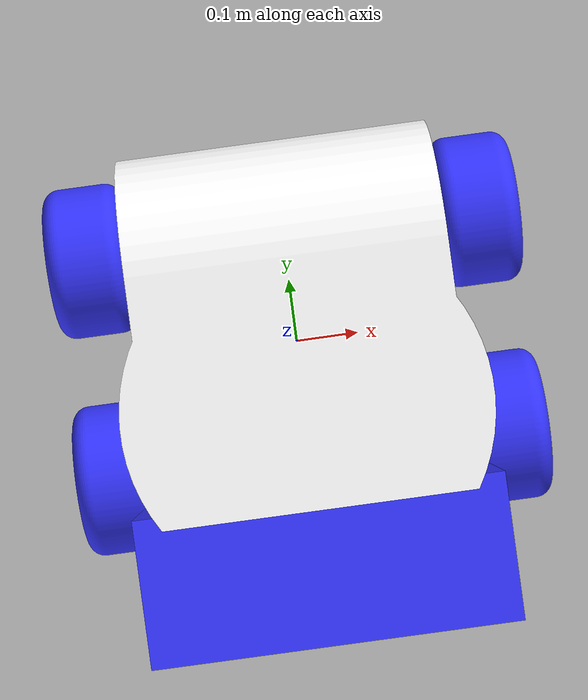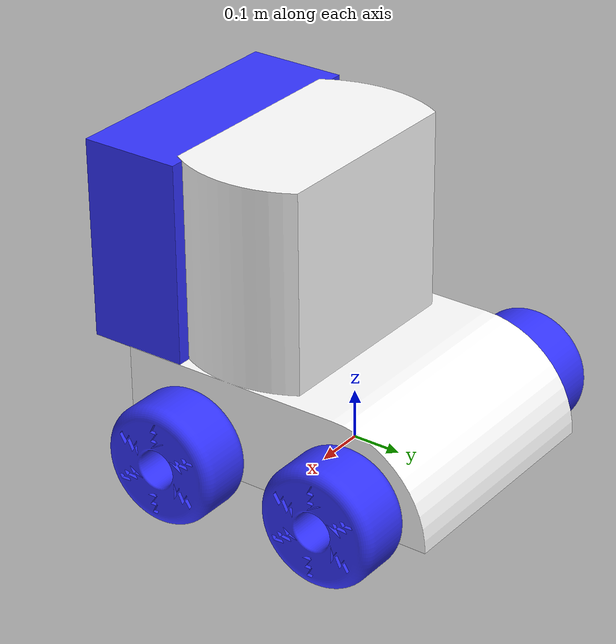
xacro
<?xml version="1.0"?>
<robot xmlns:xacro="http://www.ros.org/wiki/xacro" >
<xacro:include filename="inertial_macros.xacro" />

    <material name="white">
        <color rgba="1 1 1 1" />
    </material>

    <material name="orange">
        <color rgba="1 0.3 0.1 1"/>
    </material>

    <material name="blue">
        <color rgba="0.2 0.2 1 1"/>
    </material>

    <material name="black">
        <color rgba="0 0 0 1"/>
    </material>

    <material name="red">
        <color rgba="1 0 0 1"/>
    </material>

    <!-- BASE LINK -->

    <link name="base_link">

    </link>

     <!-- BASE_FOOTPRINT LINK -->

    <joint name="base_footprint_joint" type="fixed">
        <parent link="base_link"/>
        <child link="base_footprint"/>
        <origin xyz="0 0 0" rpy="0 0 0"/>
    </joint>

    <link name="base_footprint">
    </link>

    <joint name="chassis_joint" type="fixed">
        <parent link="base_link"/>
        <child link="chassis"/>
        <origin xyz="0 0 0"/>
    </joint>

    <link name="chassis">
    <visual>
        <origin xyz="0 0 0" rpy="0 0 0"/>
        <geometry>
            <mesh filename="file:///home/kaow/carkaow_ws/src/articubot_one/description/carkaow2.dae" scale =" 0.5 0.5 0.5"/>
        </geometry>
        <material name="white"/>
    </visual>
    <collision>
        <geometry>
            <mesh filename="file:///home/kaow/carkaow_ws/src/articubot_one/description/carkaow2.dae" scale =" 0.5 0.5 0.5"/>
        </geometry>
    </collision>
    <xacro:inertial_box mass="0.5" x="0.3" y="0.3" z="0.15">
            <origin xyz="0 0 0" rpy="0 0 0"/>
        </xacro:inertial_box>
    </link>

    <gazebo reference="chassis">
        <material>Gazebo/White</material>
    </gazebo>

    <!-- FRONT LEFT WHEEL -->

    <joint name="front_left_wheel_joint" type="continuous">
        <parent link="base_link"/>
        <child link="front_left_wheel"/>
        <origin xyz="0.31 -0.18 0.05" rpy="-${pi/2} 0 0"/>
        <axis xyz="1 0 0"/>
    </joint>

    <link name="front_left_wheel">
        <visual>
            <geometry>
                <mesh filename="file:///home/kaow/carkaow_ws/src/articubot_one/description/wheel1.dae" scale =" 0.5 0.5 0.5"/>
            </geometry>
            <material name="blue"/>
        </visual>
        <collision>
            <geometry>
                <mesh filename="file:///home/kaow/carkaow_ws/src/articubot_one/description/wheel1.dae" scale =" 0.5 0.5 0.5"/>
            </geometry>
        </collision>
        <xacro:inertial_cylinder mass="0.1" length="0.05" radius="0.05">
            <origin xyz="0 0 0" rpy="0 0 0"/>
        </xacro:inertial_cylinder>
    </link>

    <!-- BACK LEFT WHEEL -->

    <joint name="back_left_wheel_joint" type="continuous">
        <parent link="base_link"/>
        <child link="back_left_wheel"/>
        <origin xyz="0.31 0.17 0.05" rpy="-${pi/2} 0 0"/>
        <axis xyz="1 0 0"/>
    </joint>

    <link name="back_left_wheel">
        <visual>
            <geometry>
                <mesh filename="file:///home/kaow/carkaow_ws/src/articubot_one/description/wheel1.dae" scale =" 0.5 0.5 0.5"/>
            </geometry>
            <material name="blue"/>
        </visual>
        <collision>
            <geometry>
                <mesh filename="file:///home/kaow/carkaow_ws/src/articubot_one/description/wheel1.dae" scale =" 0.5 0.5 0.5"/>
            </geometry>
        </collision>
        <xacro:inertial_cylinder mass="0.1" length="0.05" radius="0.05">
            <origin xyz="0 0 0" rpy="0 0 0"/>
        </xacro:inertial_cylinder>
    </link>

    <!-- FRONT RIGHT WHEEL -->

    <joint name="front_right_wheel_joint" type="continuous">
        <parent link="base_link"/>
        <child link="front_right_wheel"/>
        <origin xyz="-0.31 -0.18 0.05" rpy="-${pi/2} 0 0"/>
        <axis xyz="1 0 0"/>
    </joint>

    <link name="front_right_wheel">
        <visual>
            <geometry>
                <mesh filename="file:///home/kaow/carkaow_ws/src/articubot_one/description/wheel1.dae" scale =" 0.5 0.5 0.5"/>
            </geometry>
            <material name="blue"/>
        </visual>
        <collision>
            <geometry>
                <mesh filename="file:///home/kaow/carkaow_ws/src/articubot_one/description/wheel1.dae" scale =" 0.5 0.5 0.5"/>
            </geometry>
        </collision>
        <xacro:inertial_cylinder mass="0.1" length="0.05" radius="0.05">
            <origin xyz="0 0 0" rpy="0 0 0"/>
        </xacro:inertial_cylinder>
    </link>

    <!-- BACK RIGHT WHEEL -->

    <joint name="back_right_wheel_joint" type="continuous">
        <parent link="base_link"/>
        <child link="back_right_wheel"/>
        <origin xyz="-0.31 0.17 0.05" rpy="-${pi/2} 0 0"/>
        <axis xyz="1 0 0"/>
    </joint>

    <link name="back_right_wheel">
        <visual>
            <geometry>
                <mesh filename="file:///home/kaow/carkaow_ws/src/articubot_one/description/wheel1.dae" scale =" 0.5 0.5 0.5"/>
            </geometry>
            <material name="blue"/>
        </visual>
        <collision>
            <geometry>
                <mesh filename="file:///home/kaow/carkaow_ws/src/articubot_one/description/wheel1.dae" scale =" 0.5 0.5 0.5"/>
            </geometry>
        </collision>
        <xacro:inertial_cylinder mass="0.1" length="0.05" radius="0.05">
            <origin xyz="0 0 0" rpy="0 0 0"/>
        </xacro:inertial_cylinder>
    </link>

    <!-- GRIPPER -->

    <joint name="gripper_joint" type="revolute">
        <parent link="base_link"/>
        <child link="gripper"/>
        <origin xyz="0 -0.34 0.01" rpy="-${pi/2} 0 0"/>
        <axis xyz="1 0 0"/>
        <limit lower="1.57" upper="-0.052" effort="10" velocity="1"/>
        <dynamics damping="1" friction="1"/>
    </joint>

    <link name="gripper">
        <visual>
            <geometry>
                <mesh filename="file:///home/kaow/carkaow_ws/src/articubot_one/description/tapoo1.dae" scale =" 0.5 0.5 0.5"/>
            </geometry>
            <material name="blue"/>
        </visual>
        <collision>
            <geometry>
                <mesh filename="file:///home/kaow/carkaow_ws/src/articubot_one/description/tapoo1.dae" scale =" 0.5 0.5 0.5"/>
            </geometry>
        </collision>
        <xacro:inertial_cylinder mass="0.1" length="0.05" radius="0.05">
            <origin xyz="0 0 0" rpy="0 0 0"/>
        </xacro:inertial_cylinder>
    </link>

</robot>
